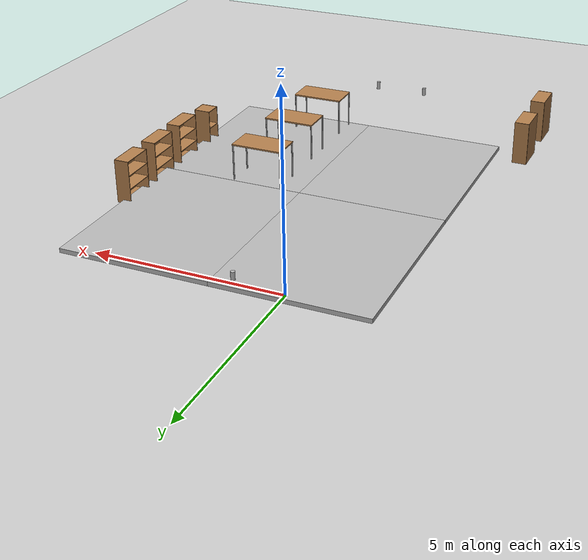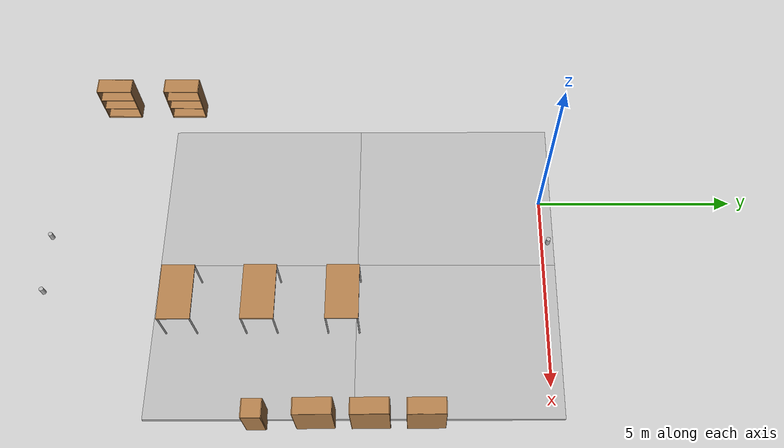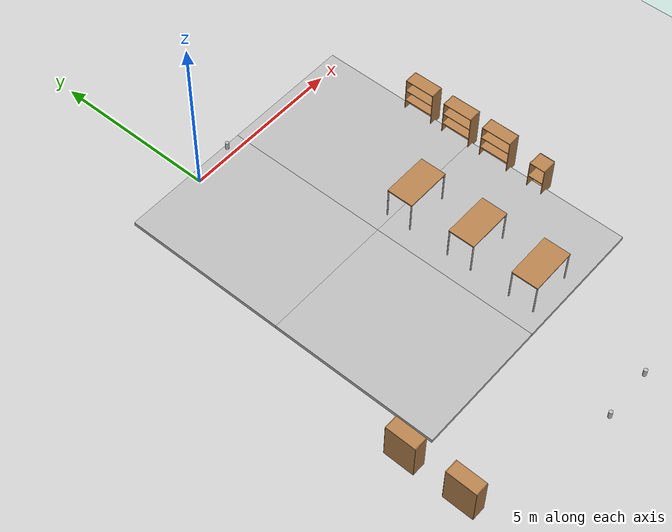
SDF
<sdf version="1.6">
 <world name="default">
  <light name="sun" type="directional">
   <pose>0 0 10 0 -0 0</pose>
   <diffuse>0.8 0.8 0.8 1</diffuse>
   <specular>0.1 0.1 0.1 1</specular>
   <attenuation>
    <range>1000</range>
    <constant>0.9</constant>
    <linear>0.01</linear>
    <quadratic>0.001</quadratic>
   </attenuation>
   <direction>-0.5 0.5 -1</direction>
  </light>
  <model name="ground_plane">
   <static>1</static>
   <link name="link">
    <collision name="collision">
     <geometry><plane><normal>0 0 1</normal><size>100 100</size></plane></geometry>
     <surface><friction><ode><mu>100</mu><mu2>50</mu2></ode></friction></surface>
    </collision>
    <visual name="visual">
     <cast_shadows>0</cast_shadows>
     <geometry><plane><normal>0 0 1</normal><size>100 100</size></plane></geometry>
     <material>
      <script><uri>file://media/materials/scripts/gazebo.material</uri><name>Gazebo/Grey</name></script>
     </material>
    </visual>
   </link>
  </model>
  <gravity>0 0 -9.8</gravity>
  <magnetic_field>6e-06 2.3e-05 -4.2e-05</magnetic_field>
  <atmosphere type="adiabatic"/>
  <physics name="default_physics" default="0" type="ode">
   <max_step_size>0.001</max_step_size>
   <real_time_factor>1</real_time_factor>
   <real_time_update_rate>1000</real_time_update_rate>
  </physics>
  <scene><ambient>0.4 0.4 0.4 1</ambient><background>0.7 0.7 0.7 1</background><shadows>1</shadows></scene>
  <spherical_coordinates>
   <surface_model>EARTH_WGS84</surface_model>
   <latitude_deg>0</latitude_deg>
   <longitude_deg>0</longitude_deg>
   <elevation>0</elevation>
   <heading_deg>0</heading_deg>
  </spherical_coordinates>
  <model name="bookshelf">
   <static>1</static>
   <link name="link">
    <inertial><mass>1</mass></inertial>
    <collision name="back">
     <pose>0 0.005 0.6 0 -0 0</pose>
     <geometry><box><size>0.9 0.01 1.2</size></box></geometry>
    </collision>
    <visual name="visual1">
     <pose>0 0.005 0.6 0 -0 0</pose>
     <geometry><box><size>0.9 0.01 1.2</size></box></geometry>
     <material>
      <script><uri>file://media/materials/scripts/gazebo.material</uri><name>Gazebo/Wood</name></script>
     </material>
    </visual>
    <collision name="left_side">
     <pose>0.45 -0.195 0.6 0 -0 0</pose>
     <geometry><box><size>0.02 0.4 1.2</size></box></geometry>
    </collision>
    <visual name="visual2">
     <pose>0.45 -0.195 0.6 0 -0 0</pose>
     <geometry><box><size>0.02 0.4 1.2</size></box></geometry>
     <material>
      <script><uri>file://media/materials/scripts/gazebo.material</uri><name>Gazebo/Wood</name></script>
     </material>
    </visual>
    <collision name="right_side">
     <pose>-0.45 -0.195 0.6 0 -0 0</pose>
     <geometry><box><size>0.02 0.4 1.2</size></box></geometry>
    </collision>
    <visual name="visual3">
     <pose>-0.45 -0.195 0.6 0 -0 0</pose>
     <geometry><box><size>0.02 0.4 1.2</size></box></geometry>
     <material>
      <script><uri>file://media/materials/scripts/gazebo.material</uri><name>Gazebo/Wood</name></script>
     </material>
    </visual>
    <collision name="bottom">
     <pose>0 -0.195 0.03 0 -0 0</pose>
     <geometry><box><size>0.88 0.4 0.06</size></box></geometry>
    </collision>
    <visual name="visual4">
     <pose>0 -0.195 0.03 0 -0 0</pose>
     <geometry><box><size>0.88 0.4 0.06</size></box></geometry>
     <material>
      <script><uri>file://media/materials/scripts/gazebo.material</uri><name>Gazebo/Wood</name></script>
     </material>
    </visual>
    <collision name="top">
     <pose>0 -0.195 1.19 0 -0 0</pose>
     <geometry><box><size>0.88 0.4 0.02</size></box></geometry>
    </collision>
    <visual name="visual5">
     <pose>0 -0.195 1.19 0 -0 0</pose>
     <geometry><box><size>0.88 0.4 0.02</size></box></geometry>
     <material>
      <script><uri>file://media/materials/scripts/gazebo.material</uri><name>Gazebo/Wood</name></script>
     </material>
    </visual>
    <collision name="low_shelf">
     <pose>0 -0.195 0.43 0 -0 0</pose>
     <geometry><box><size>0.88 0.4 0.02</size></box></geometry>
    </collision>
    <visual name="visual6">
     <pose>0 -0.195 0.43 0 -0 0</pose>
     <geometry><box><size>0.88 0.4 0.02</size></box></geometry>
     <material>
      <script><uri>file://media/materials/scripts/gazebo.material</uri><name>Gazebo/Wood</name></script>
     </material>
    </visual>
    <collision name="high_shelf">
     <pose>0 -0.195 0.8 0 -0 0</pose>
     <geometry><box><size>0.88 0.4 0.02</size></box></geometry>
    </collision>
    <visual name="visual7">
     <pose>0 -0.195 0.8 0 -0 0</pose>
     <geometry><box><size>0.88 0.4 0.02</size></box></geometry>
     <material>
      <script><uri>file://media/materials/scripts/gazebo.material</uri><name>Gazebo/Wood</name></script>
     </material>
    </visual>
   </link>
   <pose>-3.15 -11.2337 0 0 -0 1.56</pose>
  </model>
  <model name="bookshelf_0">
   <static>1</static>
   <link name="link">
    <inertial><mass>1</mass></inertial>
    <collision name="back">
     <pose>0 0.005 0.6 0 -0 0</pose>
     <geometry><box><size>0.9 0.01 1.2</size></box></geometry>
    </collision>
    <visual name="visual1">
     <pose>0 0.005 0.6 0 -0 0</pose>
     <geometry><box><size>0.9 0.01 1.2</size></box></geometry>
     <material>
      <script><uri>file://media/materials/scripts/gazebo.material</uri><name>Gazebo/Wood</name></script>
     </material>
    </visual>
    <collision name="left_side">
     <pose>0.45 -0.195 0.6 0 -0 0</pose>
     <geometry><box><size>0.02 0.4 1.2</size></box></geometry>
    </collision>
    <visual name="visual2">
     <pose>0.45 -0.195 0.6 0 -0 0</pose>
     <geometry><box><size>0.02 0.4 1.2</size></box></geometry>
     <material>
      <script><uri>file://media/materials/scripts/gazebo.material</uri><name>Gazebo/Wood</name></script>
     </material>
    </visual>
    <collision name="right_side">
     <pose>-0.45 -0.195 0.6 0 -0 0</pose>
     <geometry><box><size>0.02 0.4 1.2</size></box></geometry>
    </collision>
    <visual name="visual3">
     <pose>-0.45 -0.195 0.6 0 -0 0</pose>
     <geometry><box><size>0.02 0.4 1.2</size></box></geometry>
     <material>
      <script><uri>file://media/materials/scripts/gazebo.material</uri><name>Gazebo/Wood</name></script>
     </material>
    </visual>
    <collision name="bottom">
     <pose>0 -0.195 0.03 0 -0 0</pose>
     <geometry><box><size>0.88 0.4 0.06</size></box></geometry>
    </collision>
    <visual name="visual4">
     <pose>0 -0.195 0.03 0 -0 0</pose>
     <geometry><box><size>0.88 0.4 0.06</size></box></geometry>
     <material>
      <script><uri>file://media/materials/scripts/gazebo.material</uri><name>Gazebo/Wood</name></script>
     </material>
    </visual>
    <collision name="top">
     <pose>0 -0.195 1.19 0 -0 0</pose>
     <geometry><box><size>0.88 0.4 0.02</size></box></geometry>
    </collision>
    <visual name="visual5">
     <pose>0 -0.195 1.19 0 -0 0</pose>
     <geometry><box><size>0.88 0.4 0.02</size></box></geometry>
     <material>
      <script><uri>file://media/materials/scripts/gazebo.material</uri><name>Gazebo/Wood</name></script>
     </material>
    </visual>
    <collision name="low_shelf">
     <pose>0 -0.195 0.43 0 -0 0</pose>
     <geometry><box><size>0.88 0.4 0.02</size></box></geometry>
    </collision>
    <visual name="visual6">
     <pose>0 -0.195 0.43 0 -0 0</pose>
     <geometry><box><size>0.88 0.4 0.02</size></box></geometry>
     <material>
      <script><uri>file://media/materials/scripts/gazebo.material</uri><name>Gazebo/Wood</name></script>
     </material>
    </visual>
    <collision name="high_shelf">
     <pose>0 -0.195 0.8 0 -0 0</pose>
     <geometry><box><size>0.88 0.4 0.02</size></box></geometry>
    </collision>
    <visual name="visual7">
     <pose>0 -0.195 0.8 0 -0 0</pose>
     <geometry><box><size>0.88 0.4 0.02</size></box></geometry>
     <material>
      <script><uri>file://media/materials/scripts/gazebo.material</uri><name>Gazebo/Wood</name></script>
     </material>
    </visual>
   </link>
   <pose>-3.15 -9.46374 0 0 -0 1.56</pose>
  </model>
  <model name="bookshelf_1">
   <static>1</static>
   <link name="link">
    <inertial><mass>1</mass></inertial>
    <collision name="back">
     <pose>0 0.005 0.6 0 -0 0</pose>
     <geometry><box><size>0.9 0.01 1.2</size></box></geometry>
    </collision>
    <visual name="visual1">
     <pose>0 0.005 0.6 0 -0 0</pose>
     <geometry><box><size>0.9 0.01 1.2</size></box></geometry>
     <material>
      <script><uri>file://media/materials/scripts/gazebo.material</uri><name>Gazebo/Wood</name></script>
     </material>
    </visual>
    <collision name="left_side">
     <pose>0.45 -0.195 0.6 0 -0 0</pose>
     <geometry><box><size>0.02 0.4 1.2</size></box></geometry>
    </collision>
    <visual name="visual2">
     <pose>0.45 -0.195 0.6 0 -0 0</pose>
     <geometry><box><size>0.02 0.4 1.2</size></box></geometry>
     <material>
      <script><uri>file://media/materials/scripts/gazebo.material</uri><name>Gazebo/Wood</name></script>
     </material>
    </visual>
    <collision name="right_side">
     <pose>-0.45 -0.195 0.6 0 -0 0</pose>
     <geometry><box><size>0.02 0.4 1.2</size></box></geometry>
    </collision>
    <visual name="visual3">
     <pose>-0.45 -0.195 0.6 0 -0 0</pose>
     <geometry><box><size>0.02 0.4 1.2</size></box></geometry>
     <material>
      <script><uri>file://media/materials/scripts/gazebo.material</uri><name>Gazebo/Wood</name></script>
     </material>
    </visual>
    <collision name="bottom">
     <pose>0 -0.195 0.03 0 -0 0</pose>
     <geometry><box><size>0.88 0.4 0.06</size></box></geometry>
    </collision>
    <visual name="visual4">
     <pose>0 -0.195 0.03 0 -0 0</pose>
     <geometry><box><size>0.88 0.4 0.06</size></box></geometry>
     <material>
      <script><uri>file://media/materials/scripts/gazebo.material</uri><name>Gazebo/Wood</name></script>
     </material>
    </visual>
    <collision name="top">
     <pose>0 -0.195 1.19 0 -0 0</pose>
     <geometry><box><size>0.88 0.4 0.02</size></box></geometry>
    </collision>
    <visual name="visual5">
     <pose>0 -0.195 1.19 0 -0 0</pose>
     <geometry><box><size>0.88 0.4 0.02</size></box></geometry>
     <material>
      <script><uri>file://media/materials/scripts/gazebo.material</uri><name>Gazebo/Wood</name></script>
     </material>
    </visual>
    <collision name="low_shelf">
     <pose>0 -0.195 0.43 0 -0 0</pose>
     <geometry><box><size>0.88 0.4 0.02</size></box></geometry>
    </collision>
    <visual name="visual6">
     <pose>0 -0.195 0.43 0 -0 0</pose>
     <geometry><box><size>0.88 0.4 0.02</size></box></geometry>
     <material>
      <script><uri>file://media/materials/scripts/gazebo.material</uri><name>Gazebo/Wood</name></script>
     </material>
    </visual>
    <collision name="high_shelf">
     <pose>0 -0.195 0.8 0 -0 0</pose>
     <geometry><box><size>0.88 0.4 0.02</size></box></geometry>
    </collision>
    <visual name="visual7">
     <pose>0 -0.195 0.8 0 -0 0</pose>
     <geometry><box><size>0.88 0.4 0.02</size></box></geometry>
     <material>
      <script><uri>file://media/materials/scripts/gazebo.material</uri><name>Gazebo/Wood</name></script>
     </material>
    </visual>
   </link>
   <pose>6 -5.6 0 0 0 -1.56</pose>
  </model>
  <model name="bookshelf_2">
   <static>1</static>
   <link name="link">
    <inertial><mass>1</mass></inertial>
    <collision name="back">
     <pose>0 0.005 0.6 0 -0 0</pose>
     <geometry><box><size>0.9 0.01 1.2</size></box></geometry>
    </collision>
    <visual name="visual1">
     <pose>0 0.005 0.6 0 -0 0</pose>
     <geometry><box><size>0.9 0.01 1.2</size></box></geometry>
     <material>
      <script><uri>file://media/materials/scripts/gazebo.material</uri><name>Gazebo/Wood</name></script>
     </material>
    </visual>
    <collision name="left_side">
     <pose>0.45 -0.195 0.6 0 -0 0</pose>
     <geometry><box><size>0.02 0.4 1.2</size></box></geometry>
    </collision>
    <visual name="visual2">
     <pose>0.45 -0.195 0.6 0 -0 0</pose>
     <geometry><box><size>0.02 0.4 1.2</size></box></geometry>
     <material>
      <script><uri>file://media/materials/scripts/gazebo.material</uri><name>Gazebo/Wood</name></script>
     </material>
    </visual>
    <collision name="right_side">
     <pose>-0.45 -0.195 0.6 0 -0 0</pose>
     <geometry><box><size>0.02 0.4 1.2</size></box></geometry>
    </collision>
    <visual name="visual3">
     <pose>-0.45 -0.195 0.6 0 -0 0</pose>
     <geometry><box><size>0.02 0.4 1.2</size></box></geometry>
     <material>
      <script><uri>file://media/materials/scripts/gazebo.material</uri><name>Gazebo/Wood</name></script>
     </material>
    </visual>
    <collision name="bottom">
     <pose>0 -0.195 0.03 0 -0 0</pose>
     <geometry><box><size>0.88 0.4 0.06</size></box></geometry>
    </collision>
    <visual name="visual4">
     <pose>0 -0.195 0.03 0 -0 0</pose>
     <geometry><box><size>0.88 0.4 0.06</size></box></geometry>
     <material>
      <script><uri>file://media/materials/scripts/gazebo.material</uri><name>Gazebo/Wood</name></script>
     </material>
    </visual>
    <collision name="top">
     <pose>0 -0.195 1.19 0 -0 0</pose>
     <geometry><box><size>0.88 0.4 0.02</size></box></geometry>
    </collision>
    <visual name="visual5">
     <pose>0 -0.195 1.19 0 -0 0</pose>
     <geometry><box><size>0.88 0.4 0.02</size></box></geometry>
     <material>
      <script><uri>file://media/materials/scripts/gazebo.material</uri><name>Gazebo/Wood</name></script>
     </material>
    </visual>
    <collision name="low_shelf">
     <pose>0 -0.195 0.43 0 -0 0</pose>
     <geometry><box><size>0.88 0.4 0.02</size></box></geometry>
    </collision>
    <visual name="visual6">
     <pose>0 -0.195 0.43 0 -0 0</pose>
     <geometry><box><size>0.88 0.4 0.02</size></box></geometry>
     <material>
      <script><uri>file://media/materials/scripts/gazebo.material</uri><name>Gazebo/Wood</name></script>
     </material>
    </visual>
    <collision name="high_shelf">
     <pose>0 -0.195 0.8 0 -0 0</pose>
     <geometry><box><size>0.88 0.4 0.02</size></box></geometry>
    </collision>
    <visual name="visual7">
     <pose>0 -0.195 0.8 0 -0 0</pose>
     <geometry><box><size>0.88 0.4 0.02</size></box></geometry>
     <material>
      <script><uri>file://media/materials/scripts/gazebo.material</uri><name>Gazebo/Wood</name></script>
     </material>
    </visual>
   </link>
   <pose>6 -4.3 0 0 0 -1.56</pose>
  </model>
  <model name="bookshelf_3">
   <static>1</static>
   <link name="link">
    <inertial><mass>1</mass></inertial>
    <collision name="back">
     <pose>0 0.005 0.6 0 -0 0</pose>
     <geometry><box><size>0.9 0.01 1.2</size></box></geometry>
    </collision>
    <visual name="visual1">
     <pose>0 0.005 0.6 0 -0 0</pose>
     <geometry><box><size>0.9 0.01 1.2</size></box></geometry>
     <material>
      <script><uri>file://media/materials/scripts/gazebo.material</uri><name>Gazebo/Wood</name></script>
     </material>
    </visual>
    <collision name="left_side">
     <pose>0.45 -0.195 0.6 0 -0 0</pose>
     <geometry><box><size>0.02 0.4 1.2</size></box></geometry>
    </collision>
    <visual name="visual2">
     <pose>0.45 -0.195 0.6 0 -0 0</pose>
     <geometry><box><size>0.02 0.4 1.2</size></box></geometry>
     <material>
      <script><uri>file://media/materials/scripts/gazebo.material</uri><name>Gazebo/Wood</name></script>
     </material>
    </visual>
    <collision name="right_side">
     <pose>-0.45 -0.195 0.6 0 -0 0</pose>
     <geometry><box><size>0.02 0.4 1.2</size></box></geometry>
    </collision>
    <visual name="visual3">
     <pose>-0.45 -0.195 0.6 0 -0 0</pose>
     <geometry><box><size>0.02 0.4 1.2</size></box></geometry>
     <material>
      <script><uri>file://media/materials/scripts/gazebo.material</uri><name>Gazebo/Wood</name></script>
     </material>
    </visual>
    <collision name="bottom">
     <pose>0 -0.195 0.03 0 -0 0</pose>
     <geometry><box><size>0.88 0.4 0.06</size></box></geometry>
    </collision>
    <visual name="visual4">
     <pose>0 -0.195 0.03 0 -0 0</pose>
     <geometry><box><size>0.88 0.4 0.06</size></box></geometry>
     <material>
      <script><uri>file://media/materials/scripts/gazebo.material</uri><name>Gazebo/Wood</name></script>
     </material>
    </visual>
    <collision name="top">
     <pose>0 -0.195 1.19 0 -0 0</pose>
     <geometry><box><size>0.88 0.4 0.02</size></box></geometry>
    </collision>
    <visual name="visual5">
     <pose>0 -0.195 1.19 0 -0 0</pose>
     <geometry><box><size>0.88 0.4 0.02</size></box></geometry>
     <material>
      <script><uri>file://media/materials/scripts/gazebo.material</uri><name>Gazebo/Wood</name></script>
     </material>
    </visual>
    <collision name="low_shelf">
     <pose>0 -0.195 0.43 0 -0 0</pose>
     <geometry><box><size>0.88 0.4 0.02</size></box></geometry>
    </collision>
    <visual name="visual6">
     <pose>0 -0.195 0.43 0 -0 0</pose>
     <geometry><box><size>0.88 0.4 0.02</size></box></geometry>
     <material>
      <script><uri>file://media/materials/scripts/gazebo.material</uri><name>Gazebo/Wood</name></script>
     </material>
    </visual>
    <collision name="high_shelf">
     <pose>0 -0.195 0.8 0 -0 0</pose>
     <geometry><box><size>0.88 0.4 0.02</size></box></geometry>
    </collision>
    <visual name="visual7">
     <pose>0 -0.195 0.8 0 -0 0</pose>
     <geometry><box><size>0.88 0.4 0.02</size></box></geometry>
     <material>
      <script><uri>file://media/materials/scripts/gazebo.material</uri><name>Gazebo/Wood</name></script>
     </material>
    </visual>
   </link>
   <pose>6 -3 0 0 0 -1.56</pose>
  </model>
  <model name="cabinet">
   <static>1</static>
   <link name="cabinet_bottom_plate">
    <inertial>
     <pose>0 0 -1 0 -0 0</pose>
     <inertia><ixx>2.05</ixx><ixy>0</ixy><ixz>0</ixz><iyy>2.05</iyy><iyz>0</iyz><izz>2.05</izz></inertia>
     <mass>25</mass>
    </inertial>
    <collision name="cabinet_bottom_plate_geom">
     <pose>0 0 0.01 0 -0 0</pose>
     <geometry><box><size>0.45 0.45 0.02</size></box></geometry>
    </collision>
    <visual name="cabinet_bottom_plate_geom_visual">
     <pose>0 0 0.01 0 -0 0</pose>
     <geometry><box><size>0.45 0.45 0.02</size></box></geometry>
     <material>
      <script><uri>file://media/materials/scripts/gazebo.material</uri><name>Gazebo/Wood</name></script>
     </material>
    </visual>
    <collision name="cabinet_bottom_plate_geom_cabinet_back_plate">
     <pose>0.235 0 0.51 0 -0 0</pose>
     <geometry><box><size>0.02 0.45 1.02</size></box></geometry>
    </collision>
    <visual name="cabinet_bottom_plate_geom_cabinet_back_plate_visual">
     <pose>0.235 0 0.51 0 -0 0</pose>
     <geometry><box><size>0.02 0.45 1.02</size></box></geometry>
     <material>
      <script><uri>file://media/materials/scripts/gazebo.material</uri><name>Gazebo/Wood</name></script>
     </material>
    </visual>
    <collision name="cabinet_bottom_plate_geom_cabinet_left_plate">
     <pose>0 0.235 0.51 0 -0 0</pose>
     <geometry><box><size>0.45 0.02 1.02</size></box></geometry>
    </collision>
    <visual name="cabinet_bottom_plate_geom_cabinet_left_plate_visual">
     <pose>0 0.235 0.51 0 -0 0</pose>
     <geometry><box><size>0.45 0.02 1.02</size></box></geometry>
     <material>
      <script><uri>file://media/materials/scripts/gazebo.material</uri><name>Gazebo/Wood</name></script>
     </material>
    </visual>
    <collision name="cabinet_bottom_plate_geom_cabinet_middle_plate">
     <pose>0 0 0.51 0 -0 0</pose>
     <geometry><box><size>0.45 0.45 0.02</size></box></geometry>
    </collision>
    <visual name="cabinet_bottom_plate_geom_cabinet_middle_plate_visual">
     <pose>0 0 0.51 0 -0 0</pose>
     <geometry><box><size>0.45 0.45 0.02</size></box></geometry>
     <material>
      <script><uri>file://media/materials/scripts/gazebo.material</uri><name>Gazebo/Wood</name></script>
     </material>
    </visual>
    <collision name="cabinet_bottom_plate_geom_cabinet_right_plate">
     <pose>0 -0.235 0.51 0 -0 0</pose>
     <geometry><box><size>0.45 0.02 1.02</size></box></geometry>
    </collision>
    <visual name="cabinet_bottom_plate_geom_cabinet_right_plate_visual">
     <pose>0 -0.235 0.51 0 -0 0</pose>
     <geometry><box><size>0.45 0.02 1.02</size></box></geometry>
     <material>
      <script><uri>file://media/materials/scripts/gazebo.material</uri><name>Gazebo/Wood</name></script>
     </material>
    </visual>
    <collision name="cabinet_bottom_plate_geom_cabinet_top_plate">
     <pose>0 0 1.01 0 -0 0</pose>
     <geometry><box><size>0.45 0.45 0.02</size></box></geometry>
    </collision>
    <visual name="cabinet_bottom_plate_geom_cabinet_top_plate_visual">
     <pose>0 0 1.01 0 -0 0</pose>
     <geometry><box><size>0.45 0.45 0.02</size></box></geometry>
     <material>
      <script><uri>file://media/materials/scripts/gazebo.material</uri><name>Gazebo/Wood</name></script>
     </material>
    </visual>
   </link>
   <pose>5.8 -7 0 0 -0 0</pose>
  </model>
  <model name="table">
   <static>0</static>
   <link name="link">
    <collision name="surface">
     <pose>0 0 1 0 -0 0</pose>
     <geometry><box><size>1.5 0.8 0.03</size></box></geometry>
     <surface><friction><ode><mu>0.6</mu><mu2>0.6</mu2></ode></friction></surface>
    </collision>
    <visual name="visual1">
     <pose>0 0 1 0 -0 0</pose>
     <geometry><box><size>1.4 0.8 0.04</size></box></geometry>
     <material>
      <script><uri>file://media/materials/scripts/gazebo.material</uri><name>Gazebo/Wood</name></script>
     </material>
    </visual>
    <collision name="front_left_leg">
     <pose>0.68 0.38 0.5 0 -0 0</pose>
     <geometry><cylinder><radius>0.02</radius><length>1</length></cylinder></geometry>
    </collision>
    <visual name="front_left_leg">
     <pose>0.68 0.38 0.5 0 -0 0</pose>
     <geometry><cylinder><radius>0.02</radius><length>1</length></cylinder></geometry>
     <material>
      <script><uri>file://media/materials/scripts/gazebo.material</uri><name>Gazebo/Grey</name></script>
     </material>
    </visual>
    <collision name="front_right_leg">
     <pose>0.68 -0.38 0.5 0 -0 0</pose>
     <geometry><cylinder><radius>0.02</radius><length>1</length></cylinder></geometry>
    </collision>
    <visual name="front_right_leg">
     <pose>0.68 -0.38 0.5 0 -0 0</pose>
     <geometry><cylinder><radius>0.02</radius><length>1</length></cylinder></geometry>
     <material>
      <script><uri>file://media/materials/scripts/gazebo.material</uri><name>Gazebo/Grey</name></script>
     </material>
    </visual>
    <collision name="back_right_leg">
     <pose>-0.68 -0.38 0.5 0 -0 0</pose>
     <geometry><cylinder><radius>0.02</radius><length>1</length></cylinder></geometry>
    </collision>
    <visual name="back_right_leg">
     <pose>-0.68 -0.38 0.5 0 -0 0</pose>
     <geometry><cylinder><radius>0.02</radius><length>1</length></cylinder></geometry>
     <material>
      <script><uri>file://media/materials/scripts/gazebo.material</uri><name>Gazebo/Grey</name></script>
     </material>
    </visual>
    <collision name="back_left_leg">
     <pose>-0.68 0.38 0.5 0 -0 0</pose>
     <geometry><cylinder><radius>0.02</radius><length>1</length></cylinder></geometry>
    </collision>
    <visual name="back_left_leg">
     <pose>-0.68 0.38 0.5 0 -0 0</pose>
     <geometry><cylinder><radius>0.02</radius><length>1</length></cylinder></geometry>
     <material>
      <script><uri>file://media/materials/scripts/gazebo.material</uri><name>Gazebo/Grey</name></script>
     </material>
    </visual>
    <inertial>
     <inertia><ixx>1</ixx><ixy>0</ixy><ixz>0</ixz><iyy>1</iyy><iyz>0</iyz><izz>1</izz></inertia>
     <mass>1</mass>
    </inertial>
   </link>
   <pose>3 -5 0.189799 0 -0 0</pose>
  </model>
  <model name="table_1">
   <static>0</static>
   <link name="link">
    <collision name="surface">
     <pose>0 0 1 0 -0 0</pose>
     <geometry><box><size>1.5 0.8 0.03</size></box></geometry>
     <surface><friction><ode><mu>0.6</mu><mu2>0.6</mu2></ode></friction></surface>
    </collision>
    <visual name="visual1">
     <pose>0 0 1 0 -0 0</pose>
     <geometry><box><size>1.4 0.8 0.04</size></box></geometry>
     <material>
      <script><uri>file://media/materials/scripts/gazebo.material</uri><name>Gazebo/Wood</name></script>
     </material>
    </visual>
    <collision name="front_left_leg">
     <pose>0.68 0.38 0.5 0 -0 0</pose>
     <geometry><cylinder><radius>0.02</radius><length>1</length></cylinder></geometry>
    </collision>
    <visual name="front_left_leg">
     <pose>0.68 0.38 0.5 0 -0 0</pose>
     <geometry><cylinder><radius>0.02</radius><length>1</length></cylinder></geometry>
     <material>
      <script><uri>file://media/materials/scripts/gazebo.material</uri><name>Gazebo/Grey</name></script>
     </material>
    </visual>
    <collision name="front_right_leg">
     <pose>0.68 -0.38 0.5 0 -0 0</pose>
     <geometry><cylinder><radius>0.02</radius><length>1</length></cylinder></geometry>
    </collision>
    <visual name="front_right_leg">
     <pose>0.68 -0.38 0.5 0 -0 0</pose>
     <geometry><cylinder><radius>0.02</radius><length>1</length></cylinder></geometry>
     <material>
      <script><uri>file://media/materials/scripts/gazebo.material</uri><name>Gazebo/Grey</name></script>
     </material>
    </visual>
    <collision name="back_right_leg">
     <pose>-0.68 -0.38 0.5 0 -0 0</pose>
     <geometry><cylinder><radius>0.02</radius><length>1</length></cylinder></geometry>
    </collision>
    <visual name="back_right_leg">
     <pose>-0.68 -0.38 0.5 0 -0 0</pose>
     <geometry><cylinder><radius>0.02</radius><length>1</length></cylinder></geometry>
     <material>
      <script><uri>file://media/materials/scripts/gazebo.material</uri><name>Gazebo/Grey</name></script>
     </material>
    </visual>
    <collision name="back_left_leg">
     <pose>-0.68 0.38 0.5 0 -0 0</pose>
     <geometry><cylinder><radius>0.02</radius><length>1</length></cylinder></geometry>
    </collision>
    <visual name="back_left_leg">
     <pose>-0.68 0.38 0.5 0 -0 0</pose>
     <geometry><cylinder><radius>0.02</radius><length>1</length></cylinder></geometry>
     <material>
      <script><uri>file://media/materials/scripts/gazebo.material</uri><name>Gazebo/Grey</name></script>
     </material>
    </visual>
    <inertial>
     <inertia><ixx>1</ixx><ixy>0</ixy><ixz>0</ixz><iyy>1</iyy><iyz>0</iyz><izz>1</izz></inertia>
     <mass>1</mass>
    </inertial>
   </link>
   <pose>3 -7 0.189795 -2e-06 4e-06 0</pose>
  </model>
  <model name="mud_box">
   <static>1</static>
   <link name="link">
    <collision name="collision"><geometry><box><size>8 10 0.2</size></box></geometry></collision>
    <visual name="visual_1">
     <pose>-2 2.5 0 0 -0 0</pose>
     <cast_shadows>0</cast_shadows>
     <geometry><box><size>4 5 0.2</size></box></geometry>
     <material>
      <script>
       <uri>model://mud_box/materials/scripts</uri>
       <uri>model://mud_box/materials/textures</uri>
       <name>vrc/mud</name>
      </script>
     </material>
    </visual>
    <visual name="visual_2">
     <pose>2 2.5 0 0 -0 0</pose>
     <cast_shadows>0</cast_shadows>
     <geometry><box><size>4 5 0.2</size></box></geometry>
     <material>
      <script>
       <uri>model://mud_box/materials/scripts</uri>
       <uri>model://mud_box/materials/textures</uri>
       <name>vrc/mud</name>
      </script>
     </material>
    </visual>
    <visual name="visual_3">
     <pose>2 -2.5 0 0 -0 0</pose>
     <cast_shadows>0</cast_shadows>
     <geometry><box><size>4 5 0.2</size></box></geometry>
     <material>
      <script>
       <uri>model://mud_box/materials/scripts</uri>
       <uri>model://mud_box/materials/textures</uri>
       <name>vrc/mud</name>
      </script>
     </material>
    </visual>
    <visual name="visual_4">
     <pose>-2 -2.5 0 0 -0 0</pose>
     <cast_shadows>0</cast_shadows>
     <geometry><box><size>4 5 0.2</size></box></geometry>
     <material>
      <script>
       <uri>model://mud_box/materials/scripts</uri>
       <uri>model://mud_box/materials/textures</uri>
       <name>vrc/mud</name>
      </script>
     </material>
    </visual>
   </link>
   <pose>1.81362 -4.7124 0 0 -0 0</pose>
  </model>
  <model name="beer">
   <link name="link">
    <pose>0 0 0.115 0 -0 0</pose>
    <inertial>
     <mass>0.39</mass>
     <inertia><ixx>0.00058</ixx><ixy>0</ixy><ixz>0</ixz><iyy>0.00058</iyy><iyz>0</iyz><izz>0.00019</izz></inertia>
    </inertial>
    <collision name="collision">
     <geometry><cylinder><radius>0.055</radius><length>0.23</length></cylinder></geometry>
    </collision>
    <visual name="visual">
     <geometry><cylinder><radius>0.055</radius><length>0.23</length></cylinder></geometry>
     <material>
      <script>
       <uri>model://beer/materials/scripts</uri>
       <uri>model://beer/materials/textures</uri>
       <name>Beer/Diffuse</name>
      </script>
     </material>
    </visual>
   </link>
   <pose>1.2371 0.129727 0.189806 2.6e-05 0.000103 -0.000487</pose>
  </model>
  <model name="table_3">
   <static>0</static>
   <link name="link">
    <collision name="surface">
     <pose>0 0 1 0 -0 0</pose>
     <geometry><box><size>1.5 0.8 0.03</size></box></geometry>
     <surface><friction><ode><mu>0.6</mu><mu2>0.6</mu2></ode></friction></surface>
    </collision>
    <visual name="visual1">
     <pose>0 0 1 0 -0 0</pose>
     <geometry><box><size>1.4 0.8 0.04</size></box></geometry>
     <material>
      <script><uri>file://media/materials/scripts/gazebo.material</uri><name>Gazebo/Wood</name></script>
     </material>
    </visual>
    <collision name="front_left_leg">
     <pose>0.68 0.38 0.5 0 -0 0</pose>
     <geometry><cylinder><radius>0.02</radius><length>1</length></cylinder></geometry>
    </collision>
    <visual name="front_left_leg">
     <pose>0.68 0.38 0.5 0 -0 0</pose>
     <geometry><cylinder><radius>0.02</radius><length>1</length></cylinder></geometry>
     <material>
      <script><uri>file://media/materials/scripts/gazebo.material</uri><name>Gazebo/Grey</name></script>
     </material>
    </visual>
    <collision name="front_right_leg">
     <pose>0.68 -0.38 0.5 0 -0 0</pose>
     <geometry><cylinder><radius>0.02</radius><length>1</length></cylinder></geometry>
    </collision>
    <visual name="front_right_leg">
     <pose>0.68 -0.38 0.5 0 -0 0</pose>
     <geometry><cylinder><radius>0.02</radius><length>1</length></cylinder></geometry>
     <material>
      <script><uri>file://media/materials/scripts/gazebo.material</uri><name>Gazebo/Grey</name></script>
     </material>
    </visual>
    <collision name="back_right_leg">
     <pose>-0.68 -0.38 0.5 0 -0 0</pose>
     <geometry><cylinder><radius>0.02</radius><length>1</length></cylinder></geometry>
    </collision>
    <visual name="back_right_leg">
     <pose>-0.68 -0.38 0.5 0 -0 0</pose>
     <geometry><cylinder><radius>0.02</radius><length>1</length></cylinder></geometry>
     <material>
      <script><uri>file://media/materials/scripts/gazebo.material</uri><name>Gazebo/Grey</name></script>
     </material>
    </visual>
    <collision name="back_left_leg">
     <pose>-0.68 0.38 0.5 0 -0 0</pose>
     <geometry><cylinder><radius>0.02</radius><length>1</length></cylinder></geometry>
    </collision>
    <visual name="back_left_leg">
     <pose>-0.68 0.38 0.5 0 -0 0</pose>
     <geometry><cylinder><radius>0.02</radius><length>1</length></cylinder></geometry>
     <material>
      <script><uri>file://media/materials/scripts/gazebo.material</uri><name>Gazebo/Grey</name></script>
     </material>
    </visual>
    <inertial>
     <inertia><ixx>1</ixx><ixy>0</ixy><ixz>0</ixz><iyy>1</iyy><iyz>0</iyz><izz>1</izz></inertia>
     <mass>1</mass>
    </inertial>
   </link>
   <pose>3.00472 -8.97076 0.189796 2e-06 -5e-06 0.008286</pose>
  </model>
  <model name="beer_0">
   <link name="link">
    <pose>0 0 0.115 0 -0 0</pose>
    <inertial>
     <mass>0.39</mass>
     <inertia><ixx>0.00058</ixx><ixy>0</ixy><ixz>0</ixz><iyy>0.00058</iyy><iyz>0</iyz><izz>0.00019</izz></inertia>
    </inertial>
    <collision name="collision">
     <geometry><cylinder><radius>0.055</radius><length>0.23</length></cylinder></geometry>
    </collision>
    <visual name="visual">
     <geometry><cylinder><radius>0.055</radius><length>0.23</length></cylinder></geometry>
     <material>
      <script>
       <uri>model://beer/materials/scripts</uri>
       <uri>model://beer/materials/textures</uri>
       <name>Beer/Diffuse</name>
      </script>
     </material>
    </visual>
   </link>
   <pose>1.0606 -12.5503 0.189796 4.2e-05 9.4e-05 -1.9e-05</pose>
  </model>
  <model name="beer_1">
   <link name="link">
    <pose>0 0 0.115 0 -0 0</pose>
    <inertial>
     <mass>0.39</mass>
     <inertia><ixx>0.00058</ixx><ixy>0</ixy><ixz>0</ixz><iyy>0.00058</iyy><iyz>0</iyz><izz>0.00019</izz></inertia>
    </inertial>
    <collision name="collision">
     <geometry><cylinder><radius>0.055</radius><length>0.23</length></cylinder></geometry>
    </collision>
    <visual name="visual">
     <geometry><cylinder><radius>0.055</radius><length>0.23</length></cylinder></geometry>
     <material>
      <script>
       <uri>model://beer/materials/scripts</uri>
       <uri>model://beer/materials/textures</uri>
       <name>Beer/Diffuse</name>
      </script>
     </material>
    </visual>
   </link>
   <pose>2.58577 -12.5211 0.189805 2.5e-05 8.5e-05 -1.1e-05</pose>
  </model>
 </world>
</sdf>
